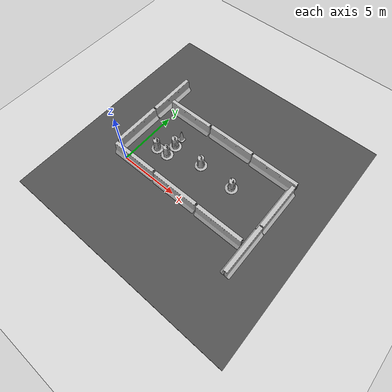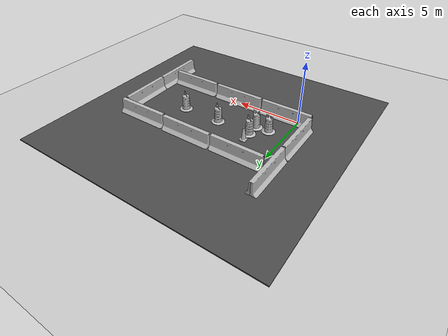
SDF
<sdf version="1.6">
 <world name="default">
  <scene>
   <sky><clouds><speed>5</speed></clouds></sky>
   <ambient>0.4 0.4 0.4 1</ambient>
   <background>0.7 0.7 0.7 1</background>
   <shadows>1</shadows>
  </scene>
  <light name="sun" type="directional">
   <pose>0 0 10 0 -0 0</pose>
   <diffuse>0.8 0.8 0.8 1</diffuse>
   <specular>0.2 0.2 0.2 1</specular>
   <attenuation>
    <range>1000</range>
    <constant>0.9</constant>
    <linear>0.01</linear>
    <quadratic>0.001</quadratic>
   </attenuation>
   <direction>-0.5 0.1 -0.9</direction>
  </light>
  <model name="ground_plane">
   <static>1</static>
   <link name="link">
    <collision name="collision">
     <geometry><plane><normal>0 0 1</normal><size>100 100</size></plane></geometry>
     <surface><friction><ode><mu>100</mu><mu2>50</mu2></ode></friction></surface>
    </collision>
    <visual name="visual">
     <cast_shadows>0</cast_shadows>
     <geometry><plane><normal>0 0 1</normal><size>100 100</size></plane></geometry>
     <material>
      <script><uri>file://media/materials/scripts/gazebo.material</uri><name>Gazebo/Grey</name></script>
     </material>
    </visual>
   </link>
  </model>
  <gravity>0 0 -9.8</gravity>
  <magnetic_field>6e-06 2.3e-05 -4.2e-05</magnetic_field>
  <atmosphere type="adiabatic"/>
  <physics name="default_physics" default="0" type="ode">
   <max_step_size>0.01</max_step_size>
   <real_time_factor>1</real_time_factor>
   <real_time_update_rate>100</real_time_update_rate>
  </physics>
  <scene><ambient>0.4 0.4 0.4 1</ambient><background>0.7 0.7 0.7 1</background><shadows>1</shadows></scene>
  <spherical_coordinates>
   <surface_model>EARTH_WGS84</surface_model>
   <latitude_deg>0</latitude_deg>
   <longitude_deg>0</longitude_deg>
   <elevation>0</elevation>
   <heading_deg>0</heading_deg>
  </spherical_coordinates>
  <model name="jersey_barrier_clone_2_clone_clone_3_clone_clone_1_clone_clone_clone_1">
   <static>1</static>
   <link name="link">
    <visual name="visual">
     <geometry><mesh><uri>model://jersey_barrier/meshes/jersey_barrier.dae</uri></mesh></geometry>
    </visual>
    <collision name="upright">
     <pose>0 0 0.5715 0 -0 0</pose>
     <geometry><box><size>4.06542 0.3063 1.143</size></box></geometry>
    </collision>
    <collision name="base">
     <pose>0 0 0.032258 0 -0 0</pose>
     <geometry><box><size>4.06542 0.8107 0.064516</size></box></geometry>
    </collision>
    <collision name="base2">
     <pose>0 0 0.1 0 -0 0</pose>
     <geometry><box><size>4.06542 0.65 0.1</size></box></geometry>
    </collision>
    <collision name="base3">
     <pose>0 0 0.2 0 -0 0</pose>
     <geometry><box><size>4.06542 0.5 0.1</size></box></geometry>
    </collision>
    <collision name="left-angle">
     <pose>0 -0.224 0.2401 0.9 -0 0</pose>
     <geometry><box><size>4.06542 0.5 0.064516</size></box></geometry>
    </collision>
    <collision name="right-angle">
     <pose>0 0.224 0.2401 -0.9 0 0</pose>
     <geometry><box><size>4.06542 0.5 0.064516</size></box></geometry>
    </collision>
   </link>
   <pose>1.61918 6.10637 0 0 -0 0</pose>
  </model>
  <model name="jersey_barrier_clone_2_clone_clone_3_clone_clone_1_clone_clone_clone_1_clone">
   <static>1</static>
   <link name="link">
    <visual name="visual">
     <geometry><mesh><uri>model://jersey_barrier/meshes/jersey_barrier.dae</uri></mesh></geometry>
    </visual>
    <collision name="upright">
     <pose>0 0 0.5715 0 -0 0</pose>
     <geometry><box><size>4.06542 0.3063 1.143</size></box></geometry>
    </collision>
    <collision name="base">
     <pose>0 0 0.032258 0 -0 0</pose>
     <geometry><box><size>4.06542 0.8107 0.064516</size></box></geometry>
    </collision>
    <collision name="base2">
     <pose>0 0 0.1 0 -0 0</pose>
     <geometry><box><size>4.06542 0.65 0.1</size></box></geometry>
    </collision>
    <collision name="base3">
     <pose>0 0 0.2 0 -0 0</pose>
     <geometry><box><size>4.06542 0.5 0.1</size></box></geometry>
    </collision>
    <collision name="left-angle">
     <pose>0 -0.224 0.2401 0.9 -0 0</pose>
     <geometry><box><size>4.06542 0.5 0.064516</size></box></geometry>
    </collision>
    <collision name="right-angle">
     <pose>0 0.224 0.2401 -0.9 0 0</pose>
     <geometry><box><size>4.06542 0.5 0.064516</size></box></geometry>
    </collision>
   </link>
   <pose>5.78451 6.1623 0 0 -0 0</pose>
  </model>
  <model name="jersey_barrier_clone_2_clone_clone_3_clone_clone_1_clone_clone_clone_1_clone_0">
   <static>1</static>
   <link name="link">
    <visual name="visual">
     <geometry><mesh><uri>model://jersey_barrier/meshes/jersey_barrier.dae</uri></mesh></geometry>
    </visual>
    <collision name="upright">
     <pose>0 0 0.5715 0 -0 0</pose>
     <geometry><box><size>4.06542 0.3063 1.143</size></box></geometry>
    </collision>
    <collision name="base">
     <pose>0 0 0.032258 0 -0 0</pose>
     <geometry><box><size>4.06542 0.8107 0.064516</size></box></geometry>
    </collision>
    <collision name="base2">
     <pose>0 0 0.1 0 -0 0</pose>
     <geometry><box><size>4.06542 0.65 0.1</size></box></geometry>
    </collision>
    <collision name="base3">
     <pose>0 0 0.2 0 -0 0</pose>
     <geometry><box><size>4.06542 0.5 0.1</size></box></geometry>
    </collision>
    <collision name="left-angle">
     <pose>0 -0.224 0.2401 0.9 -0 0</pose>
     <geometry><box><size>4.06542 0.5 0.064516</size></box></geometry>
    </collision>
    <collision name="right-angle">
     <pose>0 0.224 0.2401 -0.9 0 0</pose>
     <geometry><box><size>4.06542 0.5 0.064516</size></box></geometry>
    </collision>
   </link>
   <pose>9.94738 6.1067 0 0 -0 0</pose>
  </model>
  <model name="jersey_barrier_clone_2_clone_clone_3_clone_clone_1_clone_clone_clone_1_clone_0_clone">
   <static>1</static>
   <link name="link">
    <visual name="visual">
     <geometry><mesh><uri>model://jersey_barrier/meshes/jersey_barrier.dae</uri></mesh></geometry>
    </visual>
    <collision name="upright">
     <pose>0 0 0.5715 0 -0 0</pose>
     <geometry><box><size>4.06542 0.3063 1.143</size></box></geometry>
    </collision>
    <collision name="base">
     <pose>0 0 0.032258 0 -0 0</pose>
     <geometry><box><size>4.06542 0.8107 0.064516</size></box></geometry>
    </collision>
    <collision name="base2">
     <pose>0 0 0.1 0 -0 0</pose>
     <geometry><box><size>4.06542 0.65 0.1</size></box></geometry>
    </collision>
    <collision name="base3">
     <pose>0 0 0.2 0 -0 0</pose>
     <geometry><box><size>4.06542 0.5 0.1</size></box></geometry>
    </collision>
    <collision name="left-angle">
     <pose>0 -0.224 0.2401 0.9 -0 0</pose>
     <geometry><box><size>4.06542 0.5 0.064516</size></box></geometry>
    </collision>
    <collision name="right-angle">
     <pose>0 0.224 0.2401 -0.9 0 0</pose>
     <geometry><box><size>4.06542 0.5 0.064516</size></box></geometry>
    </collision>
   </link>
   <pose>11.8332 3.80382 0 0 0 -1.57</pose>
  </model>
  <model name="jersey_barrier_clone_2_clone_clone_3_clone_clone_1_clone_clone_clone_1_clone_0_clone_clone">
   <static>1</static>
   <link name="link">
    <visual name="visual">
     <geometry><mesh><uri>model://jersey_barrier/meshes/jersey_barrier.dae</uri></mesh></geometry>
    </visual>
    <collision name="upright">
     <pose>0 0 0.5715 0 -0 0</pose>
     <geometry><box><size>4.06542 0.3063 1.143</size></box></geometry>
    </collision>
    <collision name="base">
     <pose>0 0 0.032258 0 -0 0</pose>
     <geometry><box><size>4.06542 0.8107 0.064516</size></box></geometry>
    </collision>
    <collision name="base2">
     <pose>0 0 0.1 0 -0 0</pose>
     <geometry><box><size>4.06542 0.65 0.1</size></box></geometry>
    </collision>
    <collision name="base3">
     <pose>0 0 0.2 0 -0 0</pose>
     <geometry><box><size>4.06542 0.5 0.1</size></box></geometry>
    </collision>
    <collision name="left-angle">
     <pose>0 -0.224 0.2401 0.9 -0 0</pose>
     <geometry><box><size>4.06542 0.5 0.064516</size></box></geometry>
    </collision>
    <collision name="right-angle">
     <pose>0 0.224 0.2401 -0.9 0 0</pose>
     <geometry><box><size>4.06542 0.5 0.064516</size></box></geometry>
    </collision>
   </link>
   <pose>11.8272 -0.299163 0 0 0 -1.57</pose>
  </model>
  <model name="jersey_barrier_clone_2_clone_clone_3_clone_clone_1_clone_clone_clone_1_clone_0_clone_0">
   <static>1</static>
   <link name="link">
    <visual name="visual">
     <geometry><mesh><uri>model://jersey_barrier/meshes/jersey_barrier.dae</uri></mesh></geometry>
    </visual>
    <collision name="upright">
     <pose>0 0 0.5715 0 -0 0</pose>
     <geometry><box><size>4.06542 0.3063 1.143</size></box></geometry>
    </collision>
    <collision name="base">
     <pose>0 0 0.032258 0 -0 0</pose>
     <geometry><box><size>4.06542 0.8107 0.064516</size></box></geometry>
    </collision>
    <collision name="base2">
     <pose>0 0 0.1 0 -0 0</pose>
     <geometry><box><size>4.06542 0.65 0.1</size></box></geometry>
    </collision>
    <collision name="base3">
     <pose>0 0 0.2 0 -0 0</pose>
     <geometry><box><size>4.06542 0.5 0.1</size></box></geometry>
    </collision>
    <collision name="left-angle">
     <pose>0 -0.224 0.2401 0.9 -0 0</pose>
     <geometry><box><size>4.06542 0.5 0.064516</size></box></geometry>
    </collision>
    <collision name="right-angle">
     <pose>0 0.224 0.2401 -0.9 0 0</pose>
     <geometry><box><size>4.06542 0.5 0.064516</size></box></geometry>
    </collision>
   </link>
   <pose>9.3837 0.081624 0 0 -0 0</pose>
  </model>
  <model name="jersey_barrier_clone_2_clone_clone_3_clone_clone_1_clone_clone_clone_1_clone_0_clone_1">
   <static>1</static>
   <link name="link">
    <visual name="visual">
     <geometry><mesh><uri>model://jersey_barrier/meshes/jersey_barrier.dae</uri></mesh></geometry>
    </visual>
    <collision name="upright">
     <pose>0 0 0.5715 0 -0 0</pose>
     <geometry><box><size>4.06542 0.3063 1.143</size></box></geometry>
    </collision>
    <collision name="base">
     <pose>0 0 0.032258 0 -0 0</pose>
     <geometry><box><size>4.06542 0.8107 0.064516</size></box></geometry>
    </collision>
    <collision name="base2">
     <pose>0 0 0.1 0 -0 0</pose>
     <geometry><box><size>4.06542 0.65 0.1</size></box></geometry>
    </collision>
    <collision name="base3">
     <pose>0 0 0.2 0 -0 0</pose>
     <geometry><box><size>4.06542 0.5 0.1</size></box></geometry>
    </collision>
    <collision name="left-angle">
     <pose>0 -0.224 0.2401 0.9 -0 0</pose>
     <geometry><box><size>4.06542 0.5 0.064516</size></box></geometry>
    </collision>
    <collision name="right-angle">
     <pose>0 0.224 0.2401 -0.9 0 0</pose>
     <geometry><box><size>4.06542 0.5 0.064516</size></box></geometry>
    </collision>
   </link>
   <pose>5.19223 0.105735 0 0 -0 0</pose>
  </model>
  <model name="jersey_barrier_clone_2_clone_clone_3_clone_clone_1_clone_clone_clone_1_clone_0_clone_2">
   <static>1</static>
   <link name="link">
    <visual name="visual">
     <geometry><mesh><uri>model://jersey_barrier/meshes/jersey_barrier.dae</uri></mesh></geometry>
    </visual>
    <collision name="upright">
     <pose>0 0 0.5715 0 -0 0</pose>
     <geometry><box><size>4.06542 0.3063 1.143</size></box></geometry>
    </collision>
    <collision name="base">
     <pose>0 0 0.032258 0 -0 0</pose>
     <geometry><box><size>4.06542 0.8107 0.064516</size></box></geometry>
    </collision>
    <collision name="base2">
     <pose>0 0 0.1 0 -0 0</pose>
     <geometry><box><size>4.06542 0.65 0.1</size></box></geometry>
    </collision>
    <collision name="base3">
     <pose>0 0 0.2 0 -0 0</pose>
     <geometry><box><size>4.06542 0.5 0.1</size></box></geometry>
    </collision>
    <collision name="left-angle">
     <pose>0 -0.224 0.2401 0.9 -0 0</pose>
     <geometry><box><size>4.06542 0.5 0.064516</size></box></geometry>
    </collision>
    <collision name="right-angle">
     <pose>0 0.224 0.2401 -0.9 0 0</pose>
     <geometry><box><size>4.06542 0.5 0.064516</size></box></geometry>
    </collision>
   </link>
   <pose>1.00089 0.128784 0 0 -0 0</pose>
  </model>
  <model name="Construction Barrel_clone_clone_clone_0">
   <link name="link">
    <inertial>
     <pose>0 0 0.4 0 -0 0</pose>
     <mass>500</mass>
     <inertia><ixx>51.2096</ixx><iyy>51.2096</iyy><izz>25</izz><ixy>0</ixy><ixz>0</ixz><iyz>0</iyz></inertia>
    </inertial>
    <collision name="collision">
     <geometry><mesh><uri>model://construction_barrel/meshes/construction_barrel.dae</uri></mesh></geometry>
    </collision>
    <visual name="visual">
     <geometry><mesh><uri>model://construction_barrel/meshes/construction_barrel.dae</uri></mesh></geometry>
    </visual>
   </link>
   <pose>5.05237 3.26554 0.049868 0.000508 5e-06 -0.494669</pose>
  </model>
  <model name="Construction Barrel_clone_clone_clone_1">
   <link name="link">
    <inertial>
     <pose>0 0 0.4 0 -0 0</pose>
     <mass>500</mass>
     <inertia><ixx>51.2096</ixx><iyy>51.2096</iyy><izz>25</izz><ixy>0</ixy><ixz>0</ixz><iyz>0</iyz></inertia>
    </inertial>
    <collision name="collision">
     <geometry><mesh><uri>model://construction_barrel/meshes/construction_barrel.dae</uri></mesh></geometry>
    </collision>
    <visual name="visual">
     <geometry><mesh><uri>model://construction_barrel/meshes/construction_barrel.dae</uri></mesh></geometry>
    </visual>
   </link>
   <pose>2.31541 3.30267 0.049854 0.000542 1.9e-05 -0.481621</pose>
  </model>
  <model name="jersey_barrier_clone_2_clone_clone_3_clone_clone_1_clone_clone_clone_1_clone_0_clone_clone_clone">
   <static>1</static>
   <link name="link">
    <visual name="visual">
     <geometry><mesh><uri>model://jersey_barrier/meshes/jersey_barrier.dae</uri></mesh></geometry>
    </visual>
    <collision name="upright">
     <pose>0 0 0.5715 0 -0 0</pose>
     <geometry><box><size>4.06542 0.3063 1.143</size></box></geometry>
    </collision>
    <collision name="base">
     <pose>0 0 0.032258 0 -0 0</pose>
     <geometry><box><size>4.06542 0.8107 0.064516</size></box></geometry>
    </collision>
    <collision name="base2">
     <pose>0 0 0.1 0 -0 0</pose>
     <geometry><box><size>4.06542 0.65 0.1</size></box></geometry>
    </collision>
    <collision name="base3">
     <pose>0 0 0.2 0 -0 0</pose>
     <geometry><box><size>4.06542 0.5 0.1</size></box></geometry>
    </collision>
    <collision name="left-angle">
     <pose>0 -0.224 0.2401 0.9 -0 0</pose>
     <geometry><box><size>4.06542 0.5 0.064516</size></box></geometry>
    </collision>
    <collision name="right-angle">
     <pose>0 0.224 0.2401 -0.9 0 0</pose>
     <geometry><box><size>4.06542 0.5 0.064516</size></box></geometry>
    </collision>
   </link>
   <pose>-1.01639 2.47397 0 0 0 -1.57</pose>
  </model>
  <model name="jersey_barrier_clone_2_clone_clone_3_clone_clone_1_clone_clone_clone_1_clone_0_clone_clone_clone_0">
   <static>1</static>
   <link name="link">
    <visual name="visual">
     <geometry><mesh><uri>model://jersey_barrier/meshes/jersey_barrier.dae</uri></mesh></geometry>
    </visual>
    <collision name="upright">
     <pose>0 0 0.5715 0 -0 0</pose>
     <geometry><box><size>4.06542 0.3063 1.143</size></box></geometry>
    </collision>
    <collision name="base">
     <pose>0 0 0.032258 0 -0 0</pose>
     <geometry><box><size>4.06542 0.8107 0.064516</size></box></geometry>
    </collision>
    <collision name="base2">
     <pose>0 0 0.1 0 -0 0</pose>
     <geometry><box><size>4.06542 0.65 0.1</size></box></geometry>
    </collision>
    <collision name="base3">
     <pose>0 0 0.2 0 -0 0</pose>
     <geometry><box><size>4.06542 0.5 0.1</size></box></geometry>
    </collision>
    <collision name="left-angle">
     <pose>0 -0.224 0.2401 0.9 -0 0</pose>
     <geometry><box><size>4.06542 0.5 0.064516</size></box></geometry>
    </collision>
    <collision name="right-angle">
     <pose>0 0.224 0.2401 -0.9 0 0</pose>
     <geometry><box><size>4.06542 0.5 0.064516</size></box></geometry>
    </collision>
   </link>
   <pose>-1.00276 6.60942 0 0 0 -1.57</pose>
  </model>
  <model name="asphalt_plane">
   <static>1</static>
   <link name="link">
    <collision name="collision"><geometry><box><size>20 20 0.1</size></box></geometry></collision>
    <visual name="visual">
     <cast_shadows>0</cast_shadows>
     <geometry><box><size>20 20 0.1</size></box></geometry>
     <material>
      <script>
       <uri>model://asphalt_plane/materials/scripts</uri>
       <uri>model://asphalt_plane/materials/textures</uri>
       <name>vrc/asphalt</name>
      </script>
     </material>
    </visual>
   </link>
   <pose>5.24055 3.15657 0 0 -0 0</pose>
  </model>
  <model name="Construction Barrel_clone_clone_clone_0_clone">
   <link name="link">
    <inertial>
     <pose>0 0 0.4 0 -0 0</pose>
     <mass>500</mass>
     <inertia><ixx>51.2096</ixx><iyy>51.2096</iyy><izz>25</izz><ixy>0</ixy><ixz>0</ixz><iyz>0</iyz></inertia>
    </inertial>
    <collision name="collision">
     <geometry><mesh><uri>model://construction_barrel/meshes/construction_barrel.dae</uri></mesh></geometry>
    </collision>
    <visual name="visual">
     <geometry><mesh><uri>model://construction_barrel/meshes/construction_barrel.dae</uri></mesh></geometry>
    </visual>
   </link>
   <pose>8.12722 3.22007 0.049866 0.000512 6e-06 -0.494678</pose>
  </model>
  <model name="Construction Barrel">
   <link name="link">
    <inertial>
     <pose>0 0 0.4 0 -0 0</pose>
     <mass>500</mass>
     <inertia><ixx>51.2096</ixx><iyy>51.2096</iyy><izz>25</izz><ixy>0</ixy><ixz>0</ixz><iyz>0</iyz></inertia>
    </inertial>
    <collision name="collision">
     <geometry><mesh><uri>model://construction_barrel/meshes/construction_barrel.dae</uri></mesh></geometry>
    </collision>
    <visual name="visual">
     <geometry><mesh><uri>model://construction_barrel/meshes/construction_barrel.dae</uri></mesh></geometry>
    </visual>
   </link>
   <pose>2.32728 2.28416 0.049911 0.00036 6.9e-05 0.005782</pose>
  </model>
  <model name="Construction Barrel_0">
   <link name="link">
    <inertial>
     <pose>0 0 0.4 0 -0 0</pose>
     <mass>500</mass>
     <inertia><ixx>51.2096</ixx><iyy>51.2096</iyy><izz>25</izz><ixy>0</ixy><ixz>0</ixz><iyz>0</iyz></inertia>
    </inertial>
    <collision name="collision">
     <geometry><mesh><uri>model://construction_barrel/meshes/construction_barrel.dae</uri></mesh></geometry>
    </collision>
    <visual name="visual">
     <geometry><mesh><uri>model://construction_barrel/meshes/construction_barrel.dae</uri></mesh></geometry>
    </visual>
   </link>
   <pose>1.31399 2.23325 0.049902 1e-05 -0.000427 -0.053948</pose>
  </model>
  <model name="Construction Cone">
   <link name="link">
    <collision name="collision">
     <geometry>
      <mesh><scale>10 10 10</scale><uri>model://construction_cone/meshes/construction_cone.dae</uri></mesh>
     </geometry>
    </collision>
    <visual name="visual">
     <geometry>
      <mesh><scale>10 10 10</scale><uri>model://construction_cone/meshes/construction_cone.dae</uri></mesh>
     </geometry>
    </visual>
    <inertial>
     <inertia><ixx>1</ixx><ixy>0</ixy><ixz>0</ixz><iyy>1</iyy><iyz>0</iyz><izz>1</izz></inertia>
     <mass>1</mass>
    </inertial>
   </link>
   <pose>2.26444 4.13263 0.04996 -3e-06 0.000177 0</pose>
  </model>
 </world>
</sdf>
